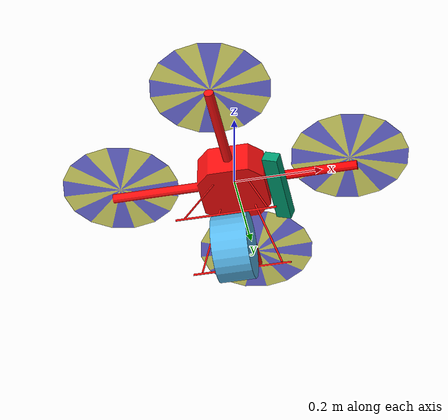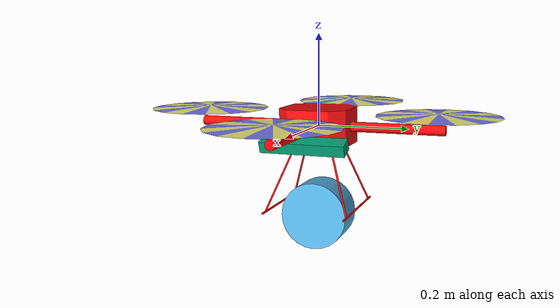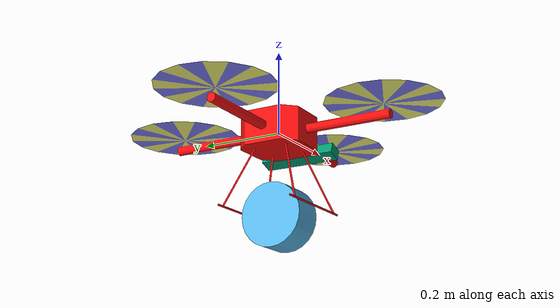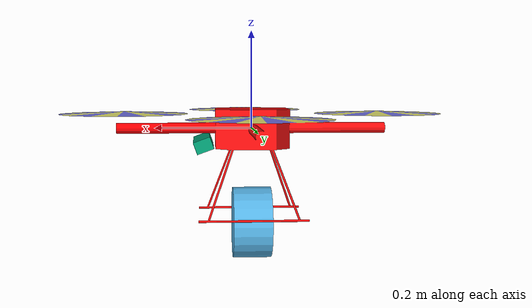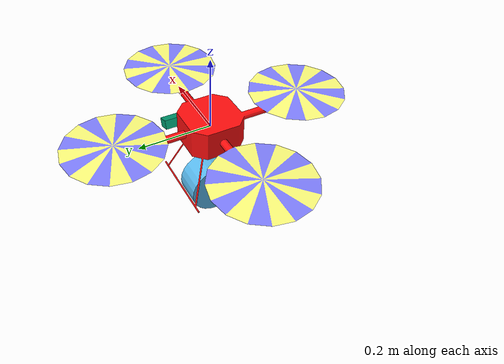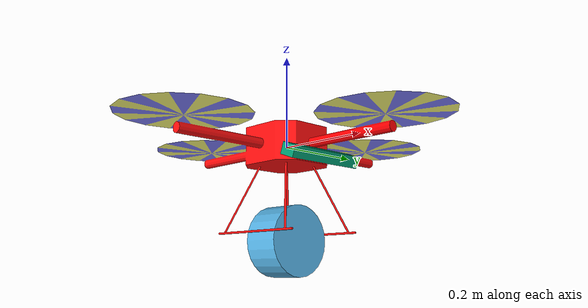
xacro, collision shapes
<?xml version="1.0"?>

<robot
  name="quadrotor"
  xmlns:xacro="http://ros.org/wiki/xacro"
>

    <xacro:property name="M_PI" value="3.1415926535897931" />

    <!-- Included URDF Files -->
    <xacro:include filename="$(find hector_quadrotor_description)/urdf/quadrotor_base.urdf.xacro" />

    <!-- Instantiate quadrotor_base_macro once (has no parameters atm) -->
    <xacro:quadrotor_base_macro />

    <!-- Hokuyo UTM-30LX mounted upside down below the quadrotor body -->
    <xacro:include filename="$(find hector_sensors_description)/urdf/hokuyo_utm30lx.urdf.xacro" />
    <xacro:hokuyo_utm30lx name="laser0" parent="base_link" ros_topic="scan" update_rate="40" ray_count="1081" min_angle="-135" max_angle="135">
      <origin xyz="0.0 0.0 -0.197" rpy="${M_PI} 0 0"/>
    </xacro:hokuyo_utm30lx>

    <!-- Asus Xiton Live Pro -->
    <xacro:include filename="$(find quadrotor_gazebo)/urdf/asus_camera.urdf.xacro" />
    <xacro:asus_camera name="camera" parent="base_link">
      <origin xyz="0.1 0.0 -0.03" rpy="0 ${M_PI/9} 0"/>
    </xacro:asus_camera>

</robot>

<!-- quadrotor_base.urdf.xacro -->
<robot xmlns:xacro="http://www.ros.org/wiki/xacro">

  <xacro:property name="pi" value="3.1415926535897931" />

  <!-- Main quadrotor link -->
  <xacro:macro name="quadrotor_base_macro">
    <link name="base_link">
      <inertial>
        <mass value="1.477" />
        <origin xyz="0 0 0" />
        <inertia ixx="0.01152" ixy="0.0" ixz="0.0" iyy="0.01152" iyz="0.0" izz="0.0218" />
      </inertial>

      <visual>
        <origin xyz="0 0 0" rpy="0 0 0" />
        <geometry>
          <mesh filename="package://hector_quadrotor_description/meshes/quadrotor/quadrotor_base.dae"/>
        </geometry>
      </visual>

      <collision>
        <origin xyz="0 0 0" rpy="0 0 0" />
        <geometry>
          <mesh filename="package://hector_quadrotor_description/meshes/quadrotor/quadrotor_base.stl"/>
        </geometry>
      </collision>
    </link>

    <!-- Sonar height sensor -->

  </xacro:macro>
</robot>

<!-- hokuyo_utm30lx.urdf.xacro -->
<robot xmlns:xacro="http://ros.org/wiki/xacro">
    <xacro:property name="M_PI" value="3.1415926535897931" />

    <xacro:macro name="hokuyo_utm30lx_model" params="name parent *origin">
      <joint name="${name}_joint" type="fixed">
        <xacro:insert_block name="origin" />
        <parent link="${parent}"/>
        <child link="${name}_frame"/>
      </joint>

      <link name="${name}_frame">
        <inertial>
          <mass value="0.270" />
          <origin xyz="0 0 0" rpy="0 0 0" />
          <inertia ixx="2.632e-4" ixy="0" ixz="0" iyy="2.632e-4" iyz="0" izz="1.62e-4" />
        </inertial>
        <visual>
          <origin xyz="0 0 0" rpy="0 0 0" />
          <geometry>
          <mesh filename="package://hector_sensors_description/meshes/hokuyo_utm30lx/hokuyo_utm_30lx$(optenv TEST_SELF_FILTER).dae"/>
        </geometry>
        </visual>
        <collision>
          <origin xyz="0.00 0 0.0" rpy="0 ${0.5 * M_PI} 0" />
          <geometry>
	    <cylinder length="0.079" radius="0.0735"/>
        </geometry>
        </collision>
      </link>
    </xacro:macro>

    <xacro:macro name="hokuyo_utm30lx" params="name parent *origin ros_topic update_rate ray_count min_angle max_angle">
      <xacro:hokuyo_utm30lx_model name="${name}" parent="${parent}">
        <xacro:insert_block name="origin" />
      </xacro:hokuyo_utm30lx_model>

      <gazebo reference="${name}_frame">
        <sensor type="ray" name="${name}">
          <always_on>true</always_on>
          <update_rate>${update_rate}</update_rate>
          <pose>0 0 0 0 0 0</pose>
          <visualize>false</visualize>
          <ray>
            <scan>
              <horizontal>
                <samples>${ray_count}</samples>
                <resolution>1</resolution>
                <min_angle>${min_angle * M_PI/180}</min_angle>
                <max_angle>${max_angle * M_PI/180}</max_angle>
              </horizontal>
            </scan>
            <range>
              <min>0.2</min>
              <max>30.0</max>
              <resolution>0.01</resolution>
            </range>
            <noise>
              <type>gaussian</type>
              <mean>0.0</mean>
              <stddev>0.004</stddev>
            </noise>
          </ray>
          <plugin name="gazebo_ros_${name}_controller" filename="libgazebo_ros_laser.so">
            <gaussianNoise>0.005</gaussianNoise>
            <hokuyoMinIntensity>2000</hokuyoMinIntensity>
            <alwaysOn>true</alwaysOn>
	    <robotNamespace>$(arg robot_name)/sensor/</robotNamespace>
            <updateRate>${update_rate}</updateRate>
            <topicName>${ros_topic}</topicName>
            <frameName>${name}_frame</frameName>
          </plugin>
        </sensor>
      </gazebo>
    </xacro:macro>

    <xacro:macro name="hokuyo_utm30lx_gpu" params="name parent *origin ros_topic update_rate ray_count min_angle max_angle">
      <xacro:hokuyo_utm30lx_model name="${name}" parent="${parent}">
        <xacro:insert_block name="origin" />
      </xacro:hokuyo_utm30lx_model>

      <gazebo reference="${name}_frame">
        <sensor type="gpu_ray" name="${name}">
          <update_rate>${update_rate}</update_rate>
          <pose>0 0 0 0 0 0</pose>
          <visualize>false</visualize>
          <ray>
            <scan>
              <horizontal>
                <samples>${ray_count}</samples>
                <resolution>1</resolution>
                <min_angle>${min_angle * M_PI/180}</min_angle>
                <max_angle>${max_angle * M_PI/180}</max_angle>
              </horizontal>
            </scan>
            <range>
              <min>0.2</min>
              <max>30.0</max>
              <resolution>0.01</resolution>
            </range>
            <noise>
              <type>gaussian</type>
              <mean>0.0</mean>
              <stddev>0.004</stddev>
            </noise>
          </ray>
          <plugin name="gazebo_ros_${name}_controller" filename="libgazebo_ros_gpu_laser.so">
            <topicName>${ros_topic}</topicName>
            <frameName>${name}_frame</frameName>
          </plugin>
        </sensor>
      </gazebo>
    </xacro:macro>
</robot>

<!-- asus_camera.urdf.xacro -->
<robot xmlns:xacro="http://ros.org/wiki/xacro">
    <xacro:property name="M_PI" value="3.1415926535897931" />

    <xacro:macro name="asus_camera_model" params="name parent *origin">
      <joint name="${name}_joint" type="fixed">
        <xacro:insert_block name="origin" />
        <parent link="${parent}"/>
        <child link="${name}_link"/>
      </joint>

      <link name="${name}_link">
        <inertial>
          <mass value="0" />
          <origin xyz="0 0 0" rpy="0 0 0" />
          <inertia ixx="5.8083e-4" ixy="0" ixz="0" iyy="3.0833e-5" iyz="0" izz="5.9083e-4" />
        </inertial>
        <visual>
          <origin xyz="0 0 0" rpy="0 0 0" />
          <geometry>
            <mesh filename="package://hector_sensors_description/meshes/asus_camera/asus_camera_simple.dae"/>
          </geometry>
        </visual>
        <collision>
          <origin xyz="0 0 0" rpy="0 0 0" />
          <geometry>
            <box size="0.035 0.185 0.025"/>
          </geometry>
        </collision>
      </link>

      <joint name="${name}_depth_joint" type="fixed">
        <origin xyz="0.0 0.049 0.0" rpy="0 0 0" />
        <parent link="${name}_link" />
        <child link="${name}_depth_frame"/>
      </joint>

      <link name="${name}_depth_frame"/>

      <joint name="${name}_depth_optical_joint" type="fixed">
        <origin xyz="0 0 0" rpy="${-M_PI/2} 0.0 ${-M_PI/2}" />
        <parent link="${name}_depth_frame" />
        <child link="${name}_depth_optical_frame"/>
      </joint>

      <link name="${name}_depth_optical_frame"/>

      <joint name="${name}_rgb_joint" type="fixed">
        <origin xyz="0.0 0.022 0.0" rpy="0 0 0" />
        <parent link="${name}_link" />
        <child link="${name}_rgb_frame"/>
      </joint>

      <link name="${name}_rgb_frame"/>

      <joint name="${name}_rgb_optical_joint" type="fixed">
        <origin xyz="0 0 0" rpy="${-M_PI/2} 0.0 ${-M_PI/2}" />
        <parent link="${name}_rgb_frame" />
        <child link="${name}_rgb_optical_frame"/>
      </joint>

      <link name="${name}_rgb_optical_frame"/>
    </xacro:macro>

    <xacro:macro name="asus_camera" params="name parent *origin">
      <xacro:asus_camera_model name="${name}" parent="${parent}">
        <xacro:insert_block name="origin" />
      </xacro:asus_camera_model>

      <!-- ASUS Xtion PRO camera for simulation -->
      <gazebo reference="${name}_depth_frame">
        <sensor type="depth" name="${name}">
          <update_rate>20</update_rate>
          <camera>
            <horizontal_fov>${62.8 * M_PI/180.0}</horizontal_fov>
            <image>
              <format>R8G8B8</format>
              <width>640</width>
              <height>480</height>
            </image>
            <clip>
              <near>0.5</near>
              <far>9</far>
            </clip>
          </camera>
          <plugin name="${name}_camera_controller" filename="libgazebo_ros_openni_kinect.so">
            <alwaysOn>true</alwaysOn>
            <updateRate>20</updateRate>
            <imageTopicName>${name}/rgb/image_raw</imageTopicName>
            <cameraInfoTopicName>${name}/rgb/camera_info</cameraInfoTopicName>
            <depthImageTopicName>${name}/depth/image_raw</depthImageTopicName>
            <depthImageCameraInfoTopicName>${name}/depth/camera_info</depthImageCameraInfoTopicName>
            <pointCloudTopicName>${name}/depth/points</pointCloudTopicName>
            <frameName>${name}_depth_optical_frame</frameName>
            <distortion_k1>0.0</distortion_k1>
            <distortion_k2>0.0</distortion_k2>
            <distortion_k3>0.0</distortion_k3>
            <distortion_t1>0.0</distortion_t1>
            <distortion_t2>0.0</distortion_t2>
          </plugin>
        </sensor>
      </gazebo>
    </xacro:macro>
  </robot>
